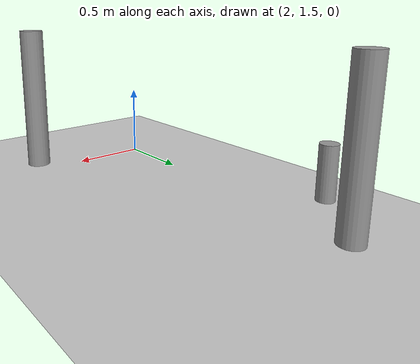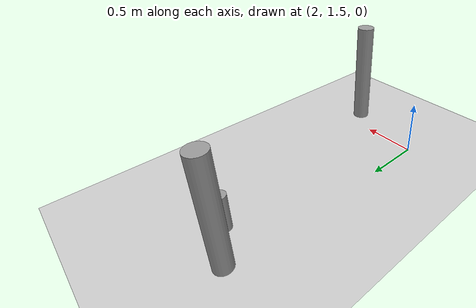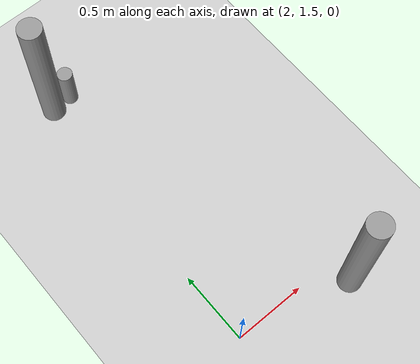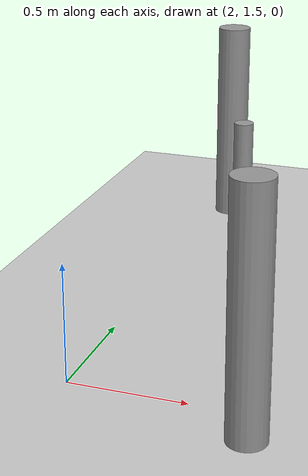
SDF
<sdf version="1.7">
 <world name="default">
  <model name="ground_plane">
   <static>1</static>
   <link name="link">
    <collision name="collision">
     <geometry><plane><normal>0 0 1</normal><size>100 100</size></plane></geometry>
     <surface>
      <contact><collide_bitmask>65535</collide_bitmask></contact>
      <friction><ode><mu>100</mu><mu2>50</mu2></ode></friction>
     </surface>
    </collision>
    <visual name="visual">
     <cast_shadows>0</cast_shadows>
     <geometry><plane><normal>0 0 1</normal><size>100 100</size></plane></geometry>
     <material>
      <script><uri>file://media/materials/scripts/gazebo.material</uri><name>Gazebo/Grey</name></script>
     </material>
    </visual>
   </link>
  </model>
  <model name="unit_cylinder_clone_clone_clone">
   <link name="link">
    <inertial>
     <mass>1</mass>
     <inertia><ixx>0.145833</ixx><ixy>0</ixy><ixz>0</ixz><iyy>0.145833</iyy><iyz>0</iyz><izz>0.125</izz></inertia>
    </inertial>
    <visual name="visual">
     <geometry><cylinder><radius>0.08</radius><length>1</length></cylinder></geometry>
     <material>
      <script><name>Gazebo/Grey</name><uri>file://media/materials/scripts/gazebo.material</uri></script>
      <shader type="pixel"><normal_map>__default__</normal_map></shader>
      <ambient>0.3 0.3 0.3 1</ambient>
      <diffuse>0.7 0.7 0.7 1</diffuse>
      <specular>0.01 0.01 0.01 1</specular>
      <emissive>0 0 0 1</emissive>
     </material>
    </visual>
    <collision name="collision">
     <geometry><cylinder><radius>0.08</radius><length>1</length></cylinder></geometry>
     <surface>
      <friction>
       <ode><mu>1</mu><mu2>1</mu2><fdir1>0 0 0</fdir1><slip1>0</slip1><slip2>0</slip2></ode>
       <torsional>
        <coefficient>1</coefficient>
        <patch_radius>0</patch_radius>
        <surface_radius>0</surface_radius>
        <use_patch_radius>1</use_patch_radius>
        <ode><slip>0</slip></ode>
       </torsional>
      </friction>
      <bounce><restitution_coefficient>0</restitution_coefficient><threshold>1e+06</threshold></bounce>
      <contact>
       <collide_without_contact>0</collide_without_contact>
       <collide_without_contact_bitmask>1</collide_without_contact_bitmask>
       <collide_bitmask>1</collide_bitmask>
       <ode>
        <soft_cfm>0</soft_cfm>
        <soft_erp>0.2</soft_erp>
        <kp>1e+13</kp>
        <kd>1</kd>
        <max_vel>0.01</max_vel>
        <min_depth>0</min_depth>
       </ode>
       <bullet>
        <split_impulse>1</split_impulse>
        <split_impulse_penetration_threshold>-0.01</split_impulse_penetration_threshold>
        <soft_cfm>0</soft_cfm>
        <soft_erp>0.2</soft_erp>
        <kp>1e+13</kp>
        <kd>1</kd>
       </bullet>
      </contact>
     </surface>
    </collision>
   </link>
   <static>0</static>
   <pose>2.77487 1.33311 0.499996 0 0 -5.4e-05</pose>
  </model>
  <model name="unit_cylinder_clone_clone_clone_0_clone_clone_clone_clone_0">
   <link name="link">
    <inertial>
     <mass>1</mass>
     <inertia><ixx>0.145833</ixx><ixy>0</ixy><ixz>0</ixz><iyy>0.145833</iyy><iyz>0</iyz><izz>0.125</izz></inertia>
    </inertial>
    <visual name="visual">
     <geometry><cylinder><radius>0.08</radius><length>1</length></cylinder></geometry>
     <material>
      <script><name>Gazebo/Grey</name><uri>file://media/materials/scripts/gazebo.material</uri></script>
      <shader type="pixel"><normal_map>__default__</normal_map></shader>
      <ambient>0.3 0.3 0.3 1</ambient>
      <diffuse>0.7 0.7 0.7 1</diffuse>
      <specular>0.01 0.01 0.01 1</specular>
      <emissive>0 0 0 1</emissive>
     </material>
    </visual>
    <collision name="collision">
     <geometry><cylinder><radius>0.08</radius><length>1</length></cylinder></geometry>
     <surface>
      <friction>
       <ode><mu>1</mu><mu2>1</mu2><fdir1>0 0 0</fdir1><slip1>0</slip1><slip2>0</slip2></ode>
       <torsional>
        <coefficient>1</coefficient>
        <patch_radius>0</patch_radius>
        <surface_radius>0</surface_radius>
        <use_patch_radius>1</use_patch_radius>
        <ode><slip>0</slip></ode>
       </torsional>
      </friction>
      <bounce><restitution_coefficient>0</restitution_coefficient><threshold>1e+06</threshold></bounce>
      <contact>
       <collide_without_contact>0</collide_without_contact>
       <collide_without_contact_bitmask>1</collide_without_contact_bitmask>
       <collide_bitmask>1</collide_bitmask>
       <ode>
        <soft_cfm>0</soft_cfm>
        <soft_erp>0.2</soft_erp>
        <kp>1e+13</kp>
        <kd>1</kd>
        <max_vel>0.01</max_vel>
        <min_depth>0</min_depth>
       </ode>
       <bullet>
        <split_impulse>1</split_impulse>
        <split_impulse_penetration_threshold>-0.01</split_impulse_penetration_threshold>
        <soft_cfm>0</soft_cfm>
        <soft_erp>0.2</soft_erp>
        <kp>1e+13</kp>
        <kd>1</kd>
       </bullet>
      </contact>
     </surface>
    </collision>
   </link>
   <static>0</static>
   <pose>2.0693 3.51587 0.500468 0.005157 0.002999 1.57789</pose>
  </model>
  <model name="unit_cylinder_clone_clone_clone_0_clone_clone_clone_clone_clone_1">
   <link name="link">
    <inertial>
     <mass>1</mass>
     <inertia><ixx>0.145833</ixx><ixy>0</ixy><ixz>0</ixz><iyy>0.145833</iyy><iyz>0</iyz><izz>0.125</izz></inertia>
    </inertial>
    <visual name="visual">
     <geometry><cylinder><radius>0.05</radius><length>0.3</length></cylinder></geometry>
     <material>
      <script><name>Gazebo/Grey</name><uri>file://media/materials/scripts/gazebo.material</uri></script>
      <shader type="pixel"><normal_map>__default__</normal_map></shader>
      <ambient>0.3 0.3 0.3 1</ambient>
      <diffuse>0.7 0.7 0.7 1</diffuse>
      <specular>0.01 0.01 0.01 1</specular>
      <emissive>0 0 0 1</emissive>
     </material>
    </visual>
    <collision name="collision">
     <pose>0 0 -0.23 0 -0 0</pose>
     <geometry><cylinder><radius>0.05</radius><length>0.3</length></cylinder></geometry>
     <surface>
      <friction>
       <ode><mu>1</mu><mu2>1</mu2><fdir1>0 0 0</fdir1><slip1>0</slip1><slip2>0</slip2></ode>
       <torsional>
        <coefficient>1</coefficient>
        <patch_radius>0</patch_radius>
        <surface_radius>0</surface_radius>
        <use_patch_radius>1</use_patch_radius>
        <ode><slip>0</slip></ode>
       </torsional>
      </friction>
      <bounce><restitution_coefficient>0</restitution_coefficient><threshold>1e+06</threshold></bounce>
      <contact>
       <collide_without_contact>0</collide_without_contact>
       <collide_without_contact_bitmask>1</collide_without_contact_bitmask>
       <collide_bitmask>1</collide_bitmask>
       <ode>
        <soft_cfm>0</soft_cfm>
        <soft_erp>0.2</soft_erp>
        <kp>1e+13</kp>
        <kd>1</kd>
        <max_vel>0.01</max_vel>
        <min_depth>0</min_depth>
       </ode>
       <bullet>
        <split_impulse>1</split_impulse>
        <split_impulse_penetration_threshold>-0.01</split_impulse_penetration_threshold>
        <soft_cfm>0</soft_cfm>
        <soft_erp>0.2</soft_erp>
        <kp>1e+13</kp>
        <kd>1</kd>
       </bullet>
      </contact>
     </surface>
    </collision>
   </link>
   <static>0</static>
   <pose>2.16167 3.40595 0.380214 0.004365 -0.000171 1.60993</pose>
  </model>
 </world>
</sdf>
